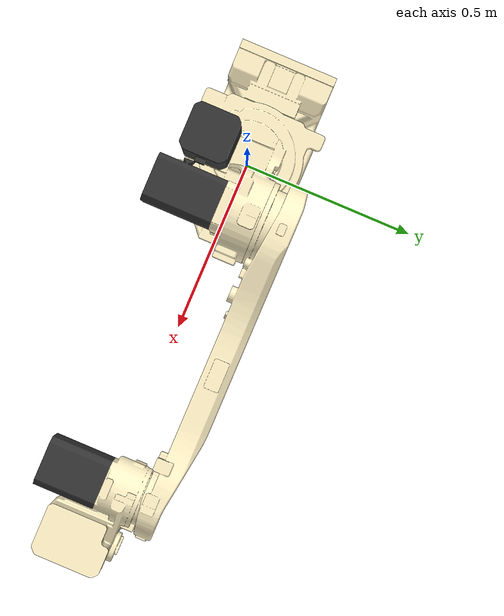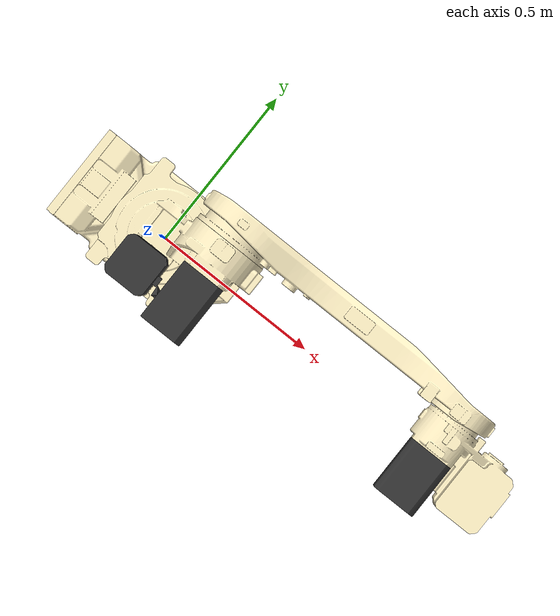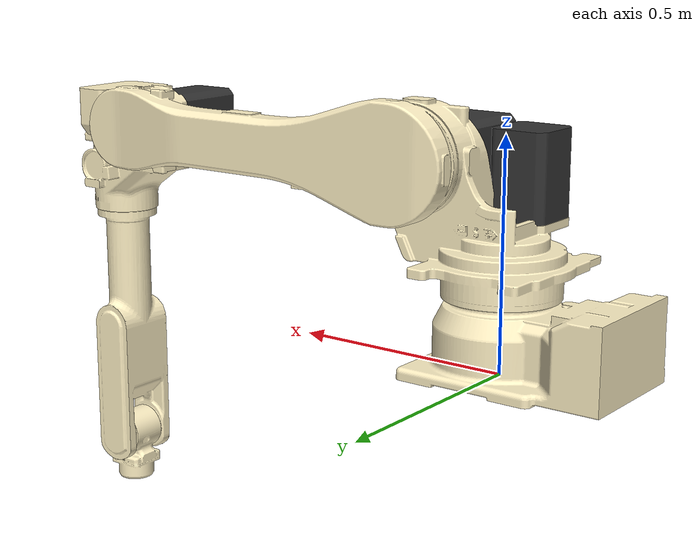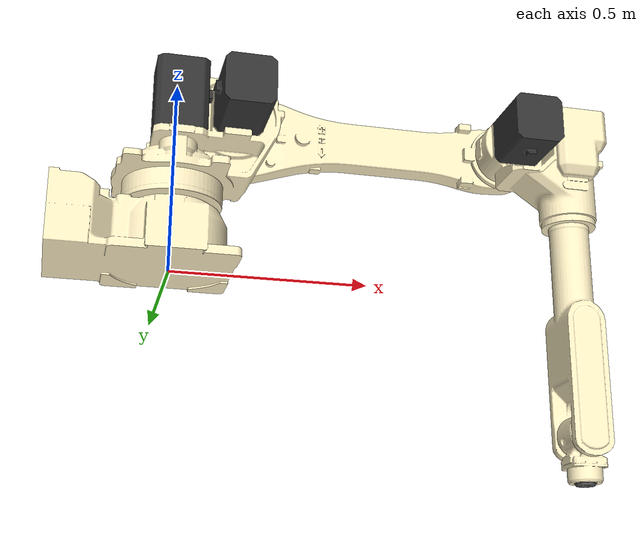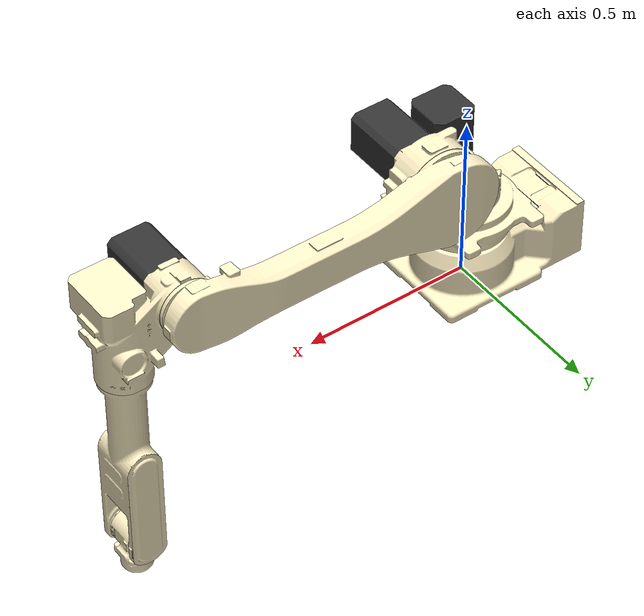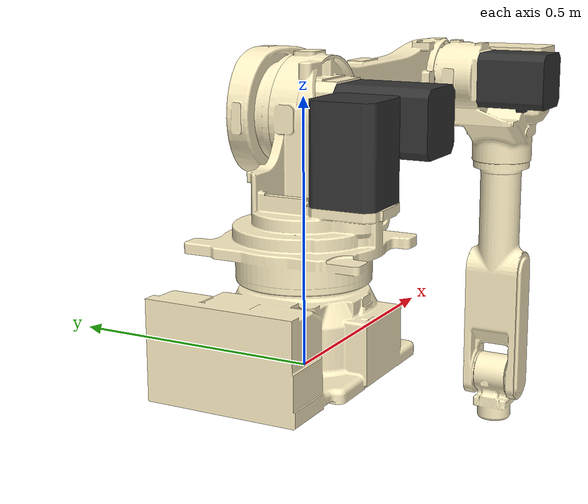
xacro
<?xml version="1.0"?>
<robot name="hdr_robot" xmlns:xacro="http://ros.org/wiki/xacro">
  <material name="ivory">
    <color rgba="1.0 0.945 0.773 1.0" />
  </material>
  <material name="black">
    <color rgba="0.2 0.2 0.2 1.0"/>
  </material>
  <material name="gray">
    <color rgba="0.3 0.3 0.3 1.0"/>
  </material>
  <xacro:property name="mesh_scale" value="0.001" />
  <link name="base_link">
    <visual>
      <geometry>
        <mesh filename="file://$(find hdr_description)/meshes/robots/hdr20_17/visual/base_body.stl" scale="${mesh_scale} ${mesh_scale} ${mesh_scale}"/>
      </geometry>
      <material name="ivory"/>
    </visual>
    <collision>
      <geometry>
        <mesh filename="file://$(find hdr_description)/meshes/robots/hdr20_17/collision/base_body.stl" scale="${mesh_scale} ${mesh_scale} ${mesh_scale}"/>
      </geometry>
    </collision>
    <inertial>
      <mass value="56.785"/>
      <origin xyz="0 0 0" rpy="0 0 0"/>
      <inertia ixx="0.6488" ixy="0" ixz="0" iyy="1.1545" iyz="0" izz="1.4753"/>
    </inertial>
  </link>
  <link name="lower_frame_link">
    <visual>
      <geometry>
        <mesh filename="file://$(find hdr_description)/meshes/robots/hdr20_17/visual/lower_frame.stl" scale="${mesh_scale} ${mesh_scale} ${mesh_scale}"/>
      </geometry>
      <material name="ivory"/>
    </visual>
    <collision>
      <geometry>
        <mesh filename="file://$(find hdr_description)/meshes/robots/hdr20_17/collision/lower_frame.stl" scale="${mesh_scale} ${mesh_scale} ${mesh_scale}"/>
      </geometry>
    </collision>
    <inertial>
      <mass value="44.2299"/>
      <origin xyz="0 0 0" rpy="0 0 0"/>
      <inertia ixx="1.0415" ixy="0" ixz="0" iyy="1.3016" iyz="0" izz="1.163"/>
    </inertial>
  </link>
  <link name="upper_frame_link">
    <visual>
      <geometry>
        <mesh filename="file://$(find hdr_description)/meshes/robots/hdr20_17/visual/upper_frame.stl" scale="${mesh_scale} ${mesh_scale} ${mesh_scale}"/>
      </geometry>
      <material name="ivory"/>
    </visual>
    <collision>
      <geometry>
        <mesh filename="file://$(find hdr_description)/meshes/robots/hdr20_17/collision/upper_frame.stl" scale="${mesh_scale} ${mesh_scale} ${mesh_scale}"/>
      </geometry>
    </collision>
    <inertial>
      <mass value="22.4028"/>
      <origin xyz="0 0 0" rpy="0 0 0"/>
      <inertia ixx="1.857" ixy="0" ixz="0" iyy="1.9503" iyz="0" izz="0.1439"/>
    </inertial>
  </link>
  <link name="arm_link">
    <visual>
      <geometry>
        <mesh filename="file://$(find hdr_description)/meshes/robots/hdr20_17/visual/arm.stl" scale="${mesh_scale} ${mesh_scale} ${mesh_scale}"/>
      </geometry>
      <material name="ivory"/>
    </visual>
    <collision>
      <geometry>
        <mesh filename="file://$(find hdr_description)/meshes/robots/hdr20_17/collision/arm.stl" scale="${mesh_scale} ${mesh_scale} ${mesh_scale}"/>
      </geometry>
    </collision>
    <inertial>
      <mass value="14.2656"/>
      <origin xyz="0 0 0" rpy="0 0 0"/>
      <inertia ixx="0.1949" ixy="0" ixz="0" iyy="0.239" iyz="0" izz="0.1873"/>
    </inertial>
  </link>
  <link name="wrist_body_link">
    <visual>
      <origin xyz="-0.16 0 0" rpy="0 0 0"/>
      <geometry>
        <mesh filename="file://$(find hdr_description)/meshes/robots/hdr20_17/visual/wrist_body.stl" scale="${mesh_scale} ${mesh_scale} ${mesh_scale}"/>
      </geometry>
      <material name="ivory"/>
    </visual>
    <collision>
      <origin xyz="-0.16 0 0" rpy="0 0 0"/>
      <geometry>
        <mesh filename="file://$(find hdr_description)/meshes/robots/hdr20_17/collision/wrist_body.stl" scale="${mesh_scale} ${mesh_scale} ${mesh_scale}"/>
      </geometry>
    </collision>
    <inertial>
      <mass value="7.0632"/>
      <origin xyz="0 0 0" rpy="0 0 0"/>
      <inertia ixx="0.0256" ixy="0" ixz="0" iyy="0.2614" iyz="0" izz="0.2626"/>
    </inertial>
  </link>
  <link name="wrist_holder_link">
    <visual>
      <geometry>
        <mesh filename="file://$(find hdr_description)/meshes/robots/hdr20_17/visual/wrist_holder.stl" scale="${mesh_scale} ${mesh_scale} ${mesh_scale}"/>
      </geometry>
      <material name="ivory"/>
    </visual>
    <collision>
      <geometry>
        <mesh filename="file://$(find hdr_description)/meshes/robots/hdr20_17/collision/wrist_holder.stl" scale="${mesh_scale} ${mesh_scale} ${mesh_scale}"/>
      </geometry>
    </collision>
    <inertial>
      <mass value="3.8171"/>
      <origin xyz="0 0 0" rpy="0 0 0"/>
      <inertia ixx="0.0063" ixy="0" ixz="0" iyy="0.0134" iyz="0" izz="0.0123"/>
    </inertial>
  </link>
  <link name="flange_link">
    <visual>
      <origin xyz="-1.0906 0 0" rpy="0 0 0"/>
      <geometry>
        <mesh filename="file://$(find hdr_description)/meshes/robots/hdr20_17/visual/flange.stl" scale="${mesh_scale} ${mesh_scale} ${mesh_scale}"/>
      </geometry>
      <material name="gray"/>
    </visual>
    <collision>
      <origin xyz="-1.0906 0 0" rpy="0 0 0"/>
      <geometry>
        <mesh filename="file://$(find hdr_description)/meshes/robots/hdr20_17/collision/flange.stl" scale="${mesh_scale} ${mesh_scale} ${mesh_scale}"/>
      </geometry>
    </collision>
    <inertial>
      <mass value="0.4672"/>
      <origin xyz="0 0 0" rpy="0 0 0"/>
      <inertia ixx="0.0003" ixy="0" ixz="0" iyy="0.0003" iyz="0" izz="0.0003"/>
    </inertial>
  </link>
  <link name="motor_s">
    <visual>
      <geometry>
        <mesh filename="file://$(find hdr_description)/meshes/robots/hdr20_17/visual/motor_s.stl" scale="${mesh_scale} ${mesh_scale} ${mesh_scale}"/>
      </geometry>
      <material name="black"/>
    </visual>
    <collision>
      <geometry>
        <mesh filename="file://$(find hdr_description)/meshes/robots/hdr20_17/collision/motor_s.stl" scale="${mesh_scale} ${mesh_scale} ${mesh_scale}"/>
      </geometry>
    </collision>
    <inertial>
      <mass value="0"/>
      <origin xyz="0 0 0" rpy="0 0 0"/>
      <inertia ixx="1e-6" ixy="0" ixz="0" iyy="1e-6" iyz="0" izz="1e-6"/>
    </inertial>
  </link>
  <link name="motor_h">
    <visual>
      <geometry>
        <mesh filename="file://$(find hdr_description)/meshes/robots/hdr20_17/visual/motor_h.stl" scale="${mesh_scale} ${mesh_scale} ${mesh_scale}"/>
      </geometry>
      <material name="black"/>
    </visual>
    <collision>
      <geometry>
        <mesh filename="file://$(find hdr_description)/meshes/robots/hdr20_17/collision/motor_h.stl" scale="${mesh_scale} ${mesh_scale} ${mesh_scale}"/>
      </geometry>
    </collision>
    <inertial>
      <mass value="0"/>
      <origin xyz="0 0 0" rpy="0 0 0"/>
      <inertia ixx="1e-6" ixy="0" ixz="0" iyy="1e-6" iyz="0" izz="1e-6"/>
    </inertial>
  </link>
  <link name="motor_v">
    <visual>
      <origin xyz="-0.16 0 -1.2166" rpy="0 0 0"/>
      <geometry>
        <mesh filename="file://$(find hdr_description)/meshes/robots/hdr20_17/visual/motor_v.stl" scale="${mesh_scale} ${mesh_scale} ${mesh_scale}"/>
      </geometry>
      <material name="black"/>
    </visual>
    <collision>
      <origin xyz="-0.16 0 -1.2166" rpy="0 0 0"/>
      <geometry>
        <mesh filename="file://$(find hdr_description)/meshes/robots/hdr20_17/collision/motor_v.stl" scale="${mesh_scale} ${mesh_scale} ${mesh_scale}"/>
      </geometry>
    </collision>
    <inertial>
      <mass value="0"/>
      <origin xyz="0 0 0" rpy="0 0 0"/>
      <inertia ixx="1e-6" ixy="0" ixz="0" iyy="1e-6" iyz="0" izz="1e-6"/>
    </inertial>
  </link>

  <joint name="j1" type="revolute">
    <parent link="base_link"/>
    <child link="lower_frame_link"/>
    <origin xyz="0 0 0" rpy="0 0 0"/>
    <axis xyz="0 0 1"/>
    <limit lower="-3.228" upper="3.228" effort="962.9" velocity="3.316"/>
  </joint>
  <joint name="j2" type="revolute">
    <parent link="lower_frame_link"/>
    <child link="upper_frame_link"/>
    <origin xyz="0.16 0 0.4466" rpy="0 1.5708 0"/>
    <axis xyz="0 -1 0"/>
    <limit lower="-1.221" upper="3.403" effort="1010.9" velocity="3.141"/>
  </joint>
  <joint name="j3" type="revolute">
    <parent link="upper_frame_link"/>
    <child link="arm_link"/>
    <origin xyz="0 0 0.77" rpy="0 0 0"/>
    <axis xyz="0 -1 0"/>
    <limit lower="-1.396" upper="3.141" effort="934.1" velocity="3.316"/>
  </joint>
  <joint name="j4" type="revolute">
    <parent link="arm_link"/>
    <child link="wrist_body_link"/>
    <origin xyz="0 0 0.14" rpy="0 0 0"/>
    <axis xyz="1 0 0"/>
    <limit lower="-3.403" upper="3.403" effort="44.9" velocity="6.632"/>
  </joint>
  <joint name="j5" type="revolute">
    <parent link="wrist_body_link"/>
    <child link="wrist_holder_link"/>
    <origin xyz="0.802 0 0" rpy="0 0 0"/>
    <axis xyz="0 -1 0"/>
    <limit lower="-2.356" upper="2.356" effort="46.9" velocity="6.632"/>
  </joint>
  <joint name="j6" type="revolute">
    <parent link="wrist_holder_link"/>
    <child link="flange_link"/>
    <origin xyz="0.1286 0 0" rpy="0 0 0"/>
    <axis xyz="1 0 0"/>
    <limit lower="-6.283" upper="6.283" effort="25.6" velocity="10.472"/>
  </joint>

  <joint name="joint_motor_s" type="fixed">
    <parent link="lower_frame_link"/>
    <child link="motor_s"/>
    <origin xyz="0 0 0" rpy="0 0 0"/>
    <axis xyz="1 0 0"/>
  </joint>
  <joint name="joint_motor_h" type="fixed">
    <parent link="lower_frame_link"/>
    <child link="motor_h"/>
    <origin xyz="0 0 0" rpy="0 0 0"/>
    <axis xyz="1 0 0"/>
  </joint>
  <joint name="joint_motor_v" type="fixed">
    <parent link="arm_link"/>
    <child link="motor_v"/>
    <origin xyz="0 0 0" rpy="0 0 0"/>
    <axis xyz="1 0 0"/>
  </joint>

  <link name="base"/>
  <joint name="base_link-base" type="fixed">
    <origin xyz="0 0 0" rpy="0 0 0"/>
    <parent link="base_link"/>
    <child link="base"/>
  </joint>
  <link name="flange"/>
  <joint name="flange_link-flange" type="fixed">
    <origin xyz="0 0 0" rpy="0 0 0"/>
    <parent link="flange_link"/>
    <child link="flange"/>
  </joint>
  <link name="tool0"/>
  <joint name="flange-tool0" type="fixed">
    <origin xyz="0 0 0" rpy="0 1.5708 0"/>
    <parent link="flange"/>
    <child link="tool0"/>
  </joint>

  <link name="world"/>
  <joint name="world_joint" type="fixed">
    <parent link="world"/>
    <child link="base_link"/>
    <origin xyz="0 0 0" rpy="0 0 0"/>
  </joint>
</robot>
